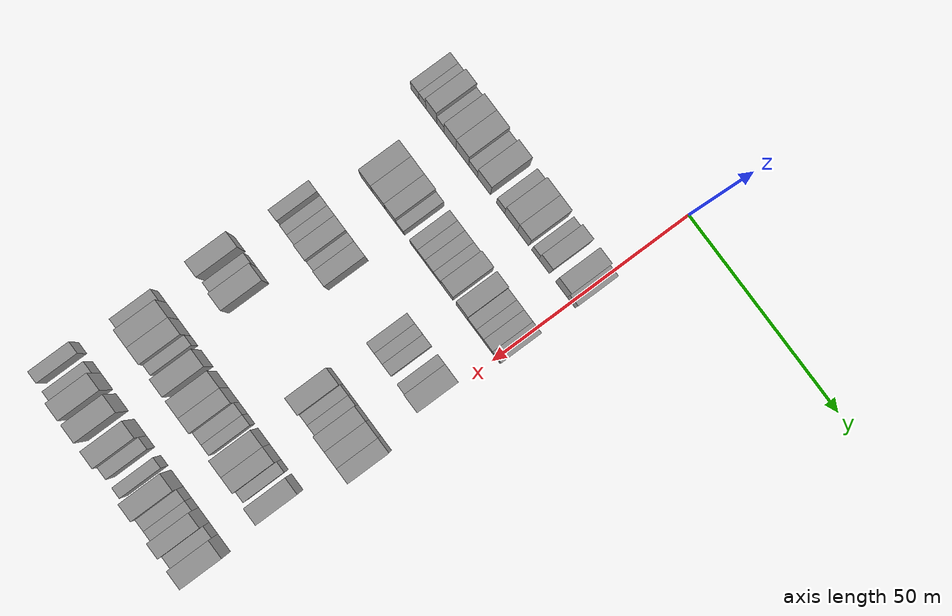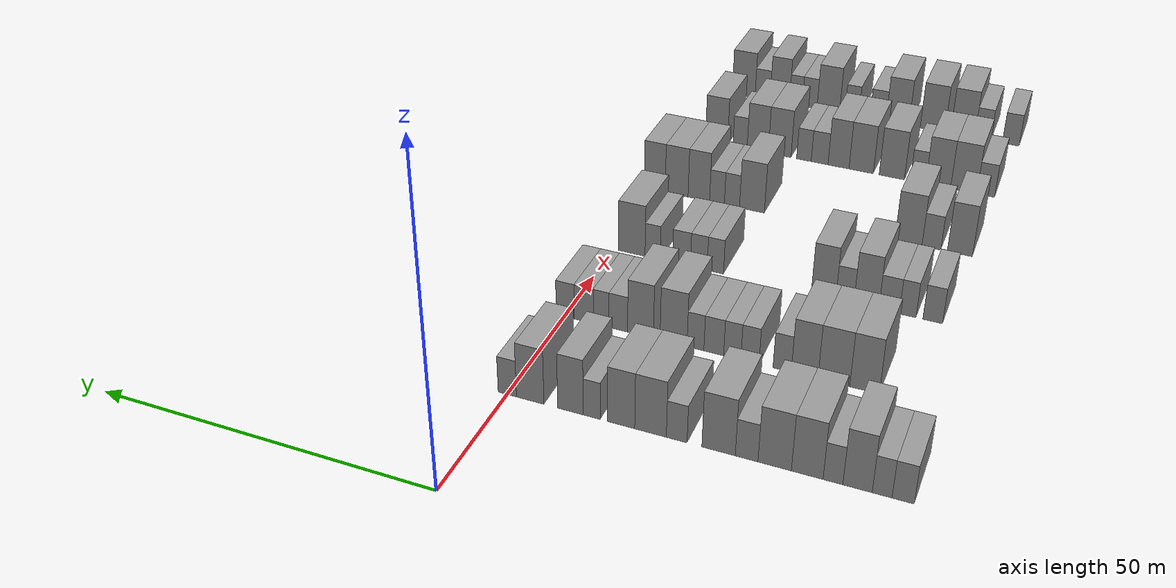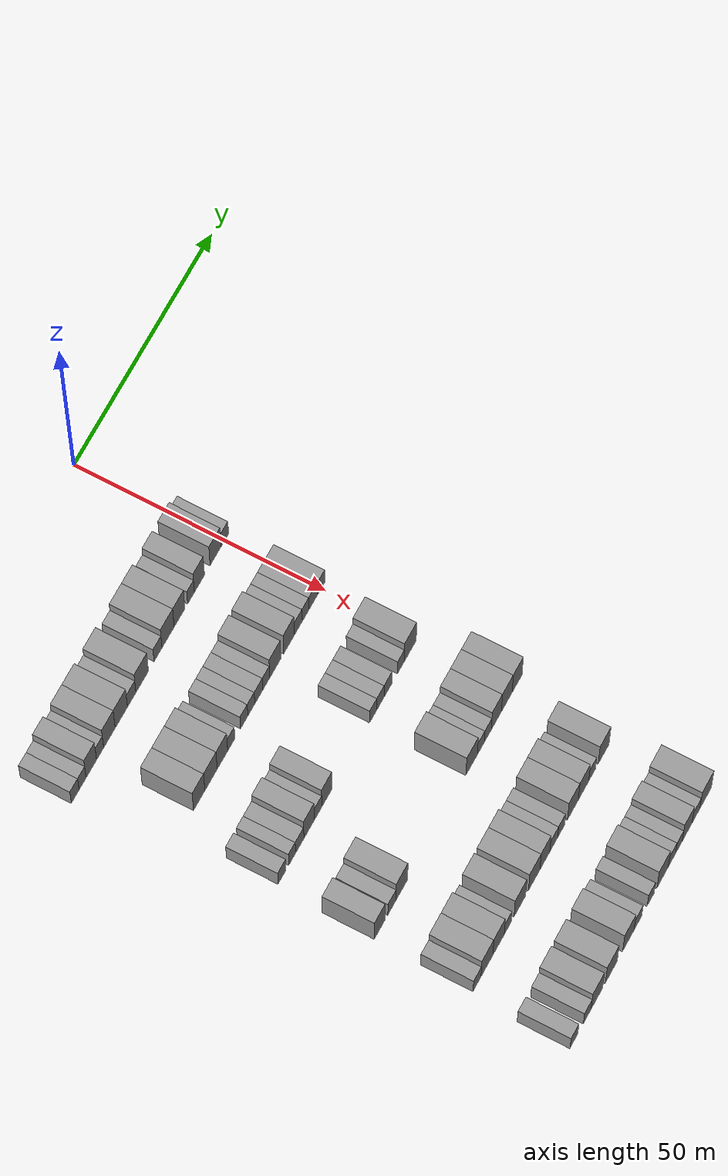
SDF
<sdf version="1.6">
 <world name="default">
  <model name="building_76">
   <static>1</static>
   <pose>25.0000 -53.2830 0 0.000000 0.000000 0.000000</pose>
   <link name="link">
    <pose>0 0 3.00 0 0 0</pose>
    <collision name="collision"><geometry><box><size>10.0000 2.7275 6.0000</size></box></geometry></collision>
    <visual name="visual">
     <cast_shadows>0</cast_shadows>
     <geometry><box><size>10.0000 2.7275 6.0000</size></box></geometry>
     <material>
      <script>
       <uri>model://grey_wall/materials/scripts</uri>
       <uri>model://grey_wall/materials/textures</uri>
       <name>vrc/grey_wall</name>
      </script>
     </material>
    </visual>
   </link>
  </model>
  <model name="building_77">
   <static>1</static>
   <pose>25.0000 -50.6937 0 0.000000 0.000000 0.000000</pose>
   <link name="link">
    <pose>0 0 3.00 0 0 0</pose>
    <collision name="collision"><geometry><box><size>10.0000 2.4512 6.0000</size></box></geometry></collision>
    <visual name="visual">
     <cast_shadows>0</cast_shadows>
     <geometry><box><size>10.0000 2.4512 6.0000</size></box></geometry>
     <material>
      <script>
       <uri>model://grey_wall/materials/scripts</uri>
       <uri>model://grey_wall/materials/textures</uri>
       <name>vrc/grey_wall</name>
      </script>
     </material>
    </visual>
   </link>
  </model>
  <model name="building_78">
   <static>1</static>
   <pose>25.0000 -47.6347 0 0.000000 0.000000 0.000000</pose>
   <link name="link">
    <pose>0 0 4.50 0 0 0</pose>
    <collision name="collision"><geometry><box><size>10.0000 3.6666 9.0000</size></box></geometry></collision>
    <visual name="visual">
     <cast_shadows>0</cast_shadows>
     <geometry><box><size>10.0000 3.6666 9.0000</size></box></geometry>
     <material>
      <script>
       <uri>model://grey_wall/materials/scripts</uri>
       <uri>model://grey_wall/materials/textures</uri>
       <name>vrc/grey_wall</name>
      </script>
     </material>
    </visual>
   </link>
  </model>
  <model name="building_79">
   <static>1</static>
   <pose>25.0000 -44.5523 0 0.000000 0.000000 0.000000</pose>
   <link name="link">
    <pose>0 0 3.00 0 0 0</pose>
    <collision name="collision"><geometry><box><size>10.0000 2.4983 6.0000</size></box></geometry></collision>
    <visual name="visual">
     <cast_shadows>0</cast_shadows>
     <geometry><box><size>10.0000 2.4983 6.0000</size></box></geometry>
     <material>
      <script>
       <uri>model://grey_wall/materials/scripts</uri>
       <uri>model://grey_wall/materials/textures</uri>
       <name>vrc/grey_wall</name>
      </script>
     </material>
    </visual>
   </link>
  </model>
  <model name="building_80">
   <static>1</static>
   <pose>25.0000 -41.2727 0 0.000000 0.000000 0.000000</pose>
   <link name="link">
    <pose>0 0 4.50 0 0 0</pose>
    <collision name="collision"><geometry><box><size>10.0000 4.0609 9.0000</size></box></geometry></collision>
    <visual name="visual">
     <cast_shadows>0</cast_shadows>
     <geometry><box><size>10.0000 4.0609 9.0000</size></box></geometry>
     <material>
      <script>
       <uri>model://grey_wall/materials/scripts</uri>
       <uri>model://grey_wall/materials/textures</uri>
       <name>vrc/grey_wall</name>
      </script>
     </material>
    </visual>
   </link>
  </model>
  <model name="building_81">
   <static>1</static>
   <pose>25.0000 -37.0720 0 0.000000 0.000000 0.000000</pose>
   <link name="link">
    <pose>0 0 4.50 0 0 0</pose>
    <collision name="collision"><geometry><box><size>10.0000 4.3405 9.0000</size></box></geometry></collision>
    <visual name="visual">
     <cast_shadows>0</cast_shadows>
     <geometry><box><size>10.0000 4.3405 9.0000</size></box></geometry>
     <material>
      <script>
       <uri>model://grey_wall/materials/scripts</uri>
       <uri>model://grey_wall/materials/textures</uri>
       <name>vrc/grey_wall</name>
      </script>
     </material>
    </visual>
   </link>
  </model>
  <model name="building_82">
   <static>1</static>
   <pose>25.0000 -33.4084 0 0.000000 0.000000 0.000000</pose>
   <link name="link">
    <pose>0 0 3.00 0 0 0</pose>
    <collision name="collision"><geometry><box><size>10.0000 2.9866 6.0000</size></box></geometry></collision>
    <visual name="visual">
     <cast_shadows>0</cast_shadows>
     <geometry><box><size>10.0000 2.9866 6.0000</size></box></geometry>
     <material>
      <script>
       <uri>model://grey_wall/materials/scripts</uri>
       <uri>model://grey_wall/materials/textures</uri>
       <name>vrc/grey_wall</name>
      </script>
     </material>
    </visual>
   </link>
  </model>
  <model name="building_83">
   <static>1</static>
   <pose>25.0000 -29.6870 0 0.000000 0.000000 0.000000</pose>
   <link name="link">
    <pose>0 0 4.50 0 0 0</pose>
    <collision name="collision"><geometry><box><size>10.0000 4.4562 9.0000</size></box></geometry></collision>
    <visual name="visual">
     <cast_shadows>0</cast_shadows>
     <geometry><box><size>10.0000 4.4562 9.0000</size></box></geometry>
     <material>
      <script>
       <uri>model://grey_wall/materials/scripts</uri>
       <uri>model://grey_wall/materials/textures</uri>
       <name>vrc/grey_wall</name>
      </script>
     </material>
    </visual>
   </link>
  </model>
  <model name="building_84">
   <static>1</static>
   <pose>25.0000 -24.0483 0 0.000000 0.000000 0.000000</pose>
   <link name="link">
    <pose>0 0 3.00 0 0 0</pose>
    <collision name="collision"><geometry><box><size>10.0000 2.8212 6.0000</size></box></geometry></collision>
    <visual name="visual">
     <cast_shadows>0</cast_shadows>
     <geometry><box><size>10.0000 2.8212 6.0000</size></box></geometry>
     <material>
      <script>
       <uri>model://grey_wall/materials/scripts</uri>
       <uri>model://grey_wall/materials/textures</uri>
       <name>vrc/grey_wall</name>
      </script>
     </material>
    </visual>
   </link>
  </model>
  <model name="building_85">
   <static>1</static>
   <pose>25.0000 -20.4585 0 0.000000 0.000000 0.000000</pose>
   <link name="link">
    <pose>0 0 4.50 0 0 0</pose>
    <collision name="collision"><geometry><box><size>10.0000 4.3584 9.0000</size></box></geometry></collision>
    <visual name="visual">
     <cast_shadows>0</cast_shadows>
     <geometry><box><size>10.0000 4.3584 9.0000</size></box></geometry>
     <material>
      <script>
       <uri>model://grey_wall/materials/scripts</uri>
       <uri>model://grey_wall/materials/textures</uri>
       <name>vrc/grey_wall</name>
      </script>
     </material>
    </visual>
   </link>
  </model>
  <model name="building_86">
   <static>1</static>
   <pose>25.0000 -16.3618 0 0.000000 0.000000 0.000000</pose>
   <link name="link">
    <pose>0 0 4.50 0 0 0</pose>
    <collision name="collision"><geometry><box><size>10.0000 3.8350 9.0000</size></box></geometry></collision>
    <visual name="visual">
     <cast_shadows>0</cast_shadows>
     <geometry><box><size>10.0000 3.8350 9.0000</size></box></geometry>
     <material>
      <script>
       <uri>model://grey_wall/materials/scripts</uri>
       <uri>model://grey_wall/materials/textures</uri>
       <name>vrc/grey_wall</name>
      </script>
     </material>
    </visual>
   </link>
  </model>
  <model name="building_87">
   <static>1</static>
   <pose>25.0000 -12.2404 0 0.000000 0.000000 0.000000</pose>
   <link name="link">
    <pose>0 0 3.00 0 0 0</pose>
    <collision name="collision"><geometry><box><size>10.0000 2.4077 6.0000</size></box></geometry></collision>
    <visual name="visual">
     <cast_shadows>0</cast_shadows>
     <geometry><box><size>10.0000 2.4077 6.0000</size></box></geometry>
     <material>
      <script>
       <uri>model://grey_wall/materials/scripts</uri>
       <uri>model://grey_wall/materials/textures</uri>
       <name>vrc/grey_wall</name>
      </script>
     </material>
    </visual>
   </link>
  </model>
  <model name="building_88">
   <static>1</static>
   <pose>25.0000 -9.2104 0 0.000000 0.000000 0.000000</pose>
   <link name="link">
    <pose>0 0 4.50 0 0 0</pose>
    <collision name="collision"><geometry><box><size>10.0000 3.6524 9.0000</size></box></geometry></collision>
    <visual name="visual">
     <cast_shadows>0</cast_shadows>
     <geometry><box><size>10.0000 3.6524 9.0000</size></box></geometry>
     <material>
      <script>
       <uri>model://grey_wall/materials/scripts</uri>
       <uri>model://grey_wall/materials/textures</uri>
       <name>vrc/grey_wall</name>
      </script>
     </material>
    </visual>
   </link>
  </model>
  <model name="building_89">
   <static>1</static>
   <pose>25.0000 -3.3761 0 0.000000 0.000000 0.000000</pose>
   <link name="link">
    <pose>0 0 4.50 0 0 0</pose>
    <collision name="collision"><geometry><box><size>10.0000 4.0163 9.0000</size></box></geometry></collision>
    <visual name="visual">
     <cast_shadows>0</cast_shadows>
     <geometry><box><size>10.0000 4.0163 9.0000</size></box></geometry>
     <material>
      <script>
       <uri>model://grey_wall/materials/scripts</uri>
       <uri>model://grey_wall/materials/textures</uri>
       <name>vrc/grey_wall</name>
      </script>
     </material>
    </visual>
   </link>
  </model>
  <model name="building_90">
   <static>1</static>
   <pose>25.0000 -0.0194 0 0.000000 0.000000 0.000000</pose>
   <link name="link">
    <pose>0 0 3.00 0 0 0</pose>
    <collision name="collision"><geometry><box><size>10.0000 2.6971 6.0000</size></box></geometry></collision>
    <visual name="visual">
     <cast_shadows>0</cast_shadows>
     <geometry><box><size>10.0000 2.6971 6.0000</size></box></geometry>
     <material>
      <script>
       <uri>model://grey_wall/materials/scripts</uri>
       <uri>model://grey_wall/materials/textures</uri>
       <name>vrc/grey_wall</name>
      </script>
     </material>
    </visual>
   </link>
  </model>
  <model name="building_249">
   <static>1</static>
   <pose>44.0000 -43.9465 0 0.000000 0.000000 0.000000</pose>
   <link name="link">
    <pose>0 0 4.50 0 0 0</pose>
    <collision name="collision"><geometry><box><size>10.0000 4.0432 9.0000</size></box></geometry></collision>
    <visual name="visual">
     <cast_shadows>0</cast_shadows>
     <geometry><box><size>10.0000 4.0432 9.0000</size></box></geometry>
     <material>
      <script>
       <uri>model://grey_wall/materials/scripts</uri>
       <uri>model://grey_wall/materials/textures</uri>
       <name>vrc/grey_wall</name>
      </script>
     </material>
    </visual>
   </link>
  </model>
  <model name="building_250">
   <static>1</static>
   <pose>44.0000 -39.7288 0 0.000000 0.000000 0.000000</pose>
   <link name="link">
    <pose>0 0 4.50 0 0 0</pose>
    <collision name="collision"><geometry><box><size>10.0000 4.3920 9.0000</size></box></geometry></collision>
    <visual name="visual">
     <cast_shadows>0</cast_shadows>
     <geometry><box><size>10.0000 4.3920 9.0000</size></box></geometry>
     <material>
      <script>
       <uri>model://grey_wall/materials/scripts</uri>
       <uri>model://grey_wall/materials/textures</uri>
       <name>vrc/grey_wall</name>
      </script>
     </material>
    </visual>
   </link>
  </model>
  <model name="building_251">
   <static>1</static>
   <pose>44.0000 -35.6604 0 0.000000 0.000000 0.000000</pose>
   <link name="link">
    <pose>0 0 4.50 0 0 0</pose>
    <collision name="collision"><geometry><box><size>10.0000 3.7448 9.0000</size></box></geometry></collision>
    <visual name="visual">
     <cast_shadows>0</cast_shadows>
     <geometry><box><size>10.0000 3.7448 9.0000</size></box></geometry>
     <material>
      <script>
       <uri>model://grey_wall/materials/scripts</uri>
       <uri>model://grey_wall/materials/textures</uri>
       <name>vrc/grey_wall</name>
      </script>
     </material>
    </visual>
   </link>
  </model>
  <model name="building_252">
   <static>1</static>
   <pose>44.0000 -32.4972 0 0.000000 0.000000 0.000000</pose>
   <link name="link">
    <pose>0 0 3.00 0 0 0</pose>
    <collision name="collision"><geometry><box><size>10.0000 2.5817 6.0000</size></box></geometry></collision>
    <visual name="visual">
     <cast_shadows>0</cast_shadows>
     <geometry><box><size>10.0000 2.5817 6.0000</size></box></geometry>
     <material>
      <script>
       <uri>model://grey_wall/materials/scripts</uri>
       <uri>model://grey_wall/materials/textures</uri>
       <name>vrc/grey_wall</name>
      </script>
     </material>
    </visual>
   </link>
  </model>
  <model name="building_253">
   <static>1</static>
   <pose>44.0000 -27.9006 0 0.000000 0.000000 0.000000</pose>
   <link name="link">
    <pose>0 0 3.00 0 0 0</pose>
    <collision name="collision"><geometry><box><size>10.0000 2.6114 6.0000</size></box></geometry></collision>
    <visual name="visual">
     <cast_shadows>0</cast_shadows>
     <geometry><box><size>10.0000 2.6114 6.0000</size></box></geometry>
     <material>
      <script>
       <uri>model://grey_wall/materials/scripts</uri>
       <uri>model://grey_wall/materials/textures</uri>
       <name>vrc/grey_wall</name>
      </script>
     </material>
    </visual>
   </link>
  </model>
  <model name="building_254">
   <static>1</static>
   <pose>44.0000 -25.3460 0 0.000000 0.000000 0.000000</pose>
   <link name="link">
    <pose>0 0 3.00 0 0 0</pose>
    <collision name="collision"><geometry><box><size>10.0000 2.4978 6.0000</size></box></geometry></collision>
    <visual name="visual">
     <cast_shadows>0</cast_shadows>
     <geometry><box><size>10.0000 2.4978 6.0000</size></box></geometry>
     <material>
      <script>
       <uri>model://grey_wall/materials/scripts</uri>
       <uri>model://grey_wall/materials/textures</uri>
       <name>vrc/grey_wall</name>
      </script>
     </material>
    </visual>
   </link>
  </model>
  <model name="building_255">
   <static>1</static>
   <pose>44.0000 -22.6495 0 0.000000 0.000000 0.000000</pose>
   <link name="link">
    <pose>0 0 3.00 0 0 0</pose>
    <collision name="collision"><geometry><box><size>10.0000 2.8953 6.0000</size></box></geometry></collision>
    <visual name="visual">
     <cast_shadows>0</cast_shadows>
     <geometry><box><size>10.0000 2.8953 6.0000</size></box></geometry>
     <material>
      <script>
       <uri>model://grey_wall/materials/scripts</uri>
       <uri>model://grey_wall/materials/textures</uri>
       <name>vrc/grey_wall</name>
      </script>
     </material>
    </visual>
   </link>
  </model>
  <model name="building_256">
   <static>1</static>
   <pose>44.0000 -19.9561 0 0.000000 0.000000 0.000000</pose>
   <link name="link">
    <pose>0 0 3.00 0 0 0</pose>
    <collision name="collision"><geometry><box><size>10.0000 2.4915 6.0000</size></box></geometry></collision>
    <visual name="visual">
     <cast_shadows>0</cast_shadows>
     <geometry><box><size>10.0000 2.4915 6.0000</size></box></geometry>
     <material>
      <script>
       <uri>model://grey_wall/materials/scripts</uri>
       <uri>model://grey_wall/materials/textures</uri>
       <name>vrc/grey_wall</name>
      </script>
     </material>
    </visual>
   </link>
  </model>
  <model name="building_257">
   <static>1</static>
   <pose>44.0000 -16.6980 0 0.000000 0.000000 0.000000</pose>
   <link name="link">
    <pose>0 0 4.50 0 0 0</pose>
    <collision name="collision"><geometry><box><size>10.0000 4.0246 9.0000</size></box></geometry></collision>
    <visual name="visual">
     <cast_shadows>0</cast_shadows>
     <geometry><box><size>10.0000 4.0246 9.0000</size></box></geometry>
     <material>
      <script>
       <uri>model://grey_wall/materials/scripts</uri>
       <uri>model://grey_wall/materials/textures</uri>
       <name>vrc/grey_wall</name>
      </script>
     </material>
    </visual>
   </link>
  </model>
  <model name="building_258">
   <static>1</static>
   <pose>44.0000 -11.7282 0 0.000000 0.000000 0.000000</pose>
   <link name="link">
    <pose>0 0 4.50 0 0 0</pose>
    <collision name="collision"><geometry><box><size>10.0000 3.9151 9.0000</size></box></geometry></collision>
    <visual name="visual">
     <cast_shadows>0</cast_shadows>
     <geometry><box><size>10.0000 3.9151 9.0000</size></box></geometry>
     <material>
      <script>
       <uri>model://grey_wall/materials/scripts</uri>
       <uri>model://grey_wall/materials/textures</uri>
       <name>vrc/grey_wall</name>
      </script>
     </material>
    </visual>
   </link>
  </model>
  <model name="building_259">
   <static>1</static>
   <pose>44.0000 -8.3479 0 0.000000 0.000000 0.000000</pose>
   <link name="link">
    <pose>0 0 3.00 0 0 0</pose>
    <collision name="collision"><geometry><box><size>10.0000 2.8455 6.0000</size></box></geometry></collision>
    <visual name="visual">
     <cast_shadows>0</cast_shadows>
     <geometry><box><size>10.0000 2.8455 6.0000</size></box></geometry>
     <material>
      <script>
       <uri>model://grey_wall/materials/scripts</uri>
       <uri>model://grey_wall/materials/textures</uri>
       <name>vrc/grey_wall</name>
      </script>
     </material>
    </visual>
   </link>
  </model>
  <model name="building_260">
   <static>1</static>
   <pose>44.0000 -5.7207 0 0.000000 0.000000 0.000000</pose>
   <link name="link">
    <pose>0 0 3.00 0 0 0</pose>
    <collision name="collision"><geometry><box><size>10.0000 2.4090 6.0000</size></box></geometry></collision>
    <visual name="visual">
     <cast_shadows>0</cast_shadows>
     <geometry><box><size>10.0000 2.4090 6.0000</size></box></geometry>
     <material>
      <script>
       <uri>model://grey_wall/materials/scripts</uri>
       <uri>model://grey_wall/materials/textures</uri>
       <name>vrc/grey_wall</name>
      </script>
     </material>
    </visual>
   </link>
  </model>
  <model name="building_261">
   <static>1</static>
   <pose>44.0000 -3.0319 0 0.000000 0.000000 0.000000</pose>
   <link name="link">
    <pose>0 0 3.00 0 0 0</pose>
    <collision name="collision"><geometry><box><size>10.0000 2.9687 6.0000</size></box></geometry></collision>
    <visual name="visual">
     <cast_shadows>0</cast_shadows>
     <geometry><box><size>10.0000 2.9687 6.0000</size></box></geometry>
     <material>
      <script>
       <uri>model://grey_wall/materials/scripts</uri>
       <uri>model://grey_wall/materials/textures</uri>
       <name>vrc/grey_wall</name>
      </script>
     </material>
    </visual>
   </link>
  </model>
  <model name="building_262">
   <static>1</static>
   <pose>44.0000 -0.1286 0 0.000000 0.000000 0.000000</pose>
   <link name="link">
    <pose>0 0 3.00 0 0 0</pose>
    <collision name="collision"><geometry><box><size>10.0000 2.8380 6.0000</size></box></geometry></collision>
    <visual name="visual">
     <cast_shadows>0</cast_shadows>
     <geometry><box><size>10.0000 2.8380 6.0000</size></box></geometry>
     <material>
      <script>
       <uri>model://grey_wall/materials/scripts</uri>
       <uri>model://grey_wall/materials/textures</uri>
       <name>vrc/grey_wall</name>
      </script>
     </material>
    </visual>
   </link>
  </model>
  <model name="building_428">
   <static>1</static>
   <pose>63.0000 -49.3367 0 0.000000 0.000000 0.000000</pose>
   <link name="link">
    <pose>0 0 3.00 0 0 0</pose>
    <collision name="collision"><geometry><box><size>10.0000 2.8236 6.0000</size></box></geometry></collision>
    <visual name="visual">
     <cast_shadows>0</cast_shadows>
     <geometry><box><size>10.0000 2.8236 6.0000</size></box></geometry>
     <material>
      <script>
       <uri>model://grey_wall/materials/scripts</uri>
       <uri>model://grey_wall/materials/textures</uri>
       <name>vrc/grey_wall</name>
      </script>
     </material>
    </visual>
   </link>
  </model>
  <model name="building_429">
   <static>1</static>
   <pose>63.0000 -45.7119 0 0.000000 0.000000 0.000000</pose>
   <link name="link">
    <pose>0 0 3.00 0 0 0</pose>
    <collision name="collision"><geometry><box><size>10.0000 2.4261 6.0000</size></box></geometry></collision>
    <visual name="visual">
     <cast_shadows>0</cast_shadows>
     <geometry><box><size>10.0000 2.4261 6.0000</size></box></geometry>
     <material>
      <script>
       <uri>model://grey_wall/materials/scripts</uri>
       <uri>model://grey_wall/materials/textures</uri>
       <name>vrc/grey_wall</name>
      </script>
     </material>
    </visual>
   </link>
  </model>
  <model name="building_430">
   <static>1</static>
   <pose>63.0000 -43.0051 0 0.000000 0.000000 0.000000</pose>
   <link name="link">
    <pose>0 0 3.00 0 0 0</pose>
    <collision name="collision"><geometry><box><size>10.0000 2.9874 6.0000</size></box></geometry></collision>
    <visual name="visual">
     <cast_shadows>0</cast_shadows>
     <geometry><box><size>10.0000 2.9874 6.0000</size></box></geometry>
     <material>
      <script>
       <uri>model://grey_wall/materials/scripts</uri>
       <uri>model://grey_wall/materials/textures</uri>
       <name>vrc/grey_wall</name>
      </script>
     </material>
    </visual>
   </link>
  </model>
  <model name="building_431">
   <static>1</static>
   <pose>63.0000 -39.6616 0 0.000000 0.000000 0.000000</pose>
   <link name="link">
    <pose>0 0 4.50 0 0 0</pose>
    <collision name="collision"><geometry><box><size>10.0000 3.6996 9.0000</size></box></geometry></collision>
    <visual name="visual">
     <cast_shadows>0</cast_shadows>
     <geometry><box><size>10.0000 3.6996 9.0000</size></box></geometry>
     <material>
      <script>
       <uri>model://grey_wall/materials/scripts</uri>
       <uri>model://grey_wall/materials/textures</uri>
       <name>vrc/grey_wall</name>
      </script>
     </material>
    </visual>
   </link>
  </model>
  <model name="building_432">
   <static>1</static>
   <pose>63.0000 -36.4621 0 0.000000 0.000000 0.000000</pose>
   <link name="link">
    <pose>0 0 3.00 0 0 0</pose>
    <collision name="collision"><geometry><box><size>10.0000 2.6994 6.0000</size></box></geometry></collision>
    <visual name="visual">
     <cast_shadows>0</cast_shadows>
     <geometry><box><size>10.0000 2.6994 6.0000</size></box></geometry>
     <material>
      <script>
       <uri>model://grey_wall/materials/scripts</uri>
       <uri>model://grey_wall/materials/textures</uri>
       <name>vrc/grey_wall</name>
      </script>
     </material>
    </visual>
   </link>
  </model>
  <model name="building_433">
   <static>1</static>
   <pose>63.0000 -33.2573 0 0.000000 0.000000 0.000000</pose>
   <link name="link">
    <pose>0 0 4.50 0 0 0</pose>
    <collision name="collision"><geometry><box><size>10.0000 3.7102 9.0000</size></box></geometry></collision>
    <visual name="visual">
     <cast_shadows>0</cast_shadows>
     <geometry><box><size>10.0000 3.7102 9.0000</size></box></geometry>
     <material>
      <script>
       <uri>model://grey_wall/materials/scripts</uri>
       <uri>model://grey_wall/materials/textures</uri>
       <name>vrc/grey_wall</name>
      </script>
     </material>
    </visual>
   </link>
  </model>
  <model name="building_434">
   <static>1</static>
   <pose>63.0000 -16.5057 0 0.000000 0.000000 0.000000</pose>
   <link name="link">
    <pose>0 0 3.00 0 0 0</pose>
    <collision name="collision"><geometry><box><size>10.0000 2.5976 6.0000</size></box></geometry></collision>
    <visual name="visual">
     <cast_shadows>0</cast_shadows>
     <geometry><box><size>10.0000 2.5976 6.0000</size></box></geometry>
     <material>
      <script>
       <uri>model://grey_wall/materials/scripts</uri>
       <uri>model://grey_wall/materials/textures</uri>
       <name>vrc/grey_wall</name>
      </script>
     </material>
    </visual>
   </link>
  </model>
  <model name="building_435">
   <static>1</static>
   <pose>63.0000 -13.8715 0 0.000000 0.000000 0.000000</pose>
   <link name="link">
    <pose>0 0 3.00 0 0 0</pose>
    <collision name="collision"><geometry><box><size>10.0000 2.6709 6.0000</size></box></geometry></collision>
    <visual name="visual">
     <cast_shadows>0</cast_shadows>
     <geometry><box><size>10.0000 2.6709 6.0000</size></box></geometry>
     <material>
      <script>
       <uri>model://grey_wall/materials/scripts</uri>
       <uri>model://grey_wall/materials/textures</uri>
       <name>vrc/grey_wall</name>
      </script>
     </material>
    </visual>
   </link>
  </model>
  <model name="building_436">
   <static>1</static>
   <pose>63.0000 -11.0898 0 0.000000 0.000000 0.000000</pose>
   <link name="link">
    <pose>0 0 3.00 0 0 0</pose>
    <collision name="collision"><geometry><box><size>10.0000 2.8925 6.0000</size></box></geometry></collision>
    <visual name="visual">
     <cast_shadows>0</cast_shadows>
     <geometry><box><size>10.0000 2.8925 6.0000</size></box></geometry>
     <material>
      <script>
       <uri>model://grey_wall/materials/scripts</uri>
       <uri>model://grey_wall/materials/textures</uri>
       <name>vrc/grey_wall</name>
      </script>
     </material>
    </visual>
   </link>
  </model>
  <model name="building_437">
   <static>1</static>
   <pose>63.0000 -6.3960 0 0.000000 0.000000 0.000000</pose>
   <link name="link">
    <pose>0 0 3.00 0 0 0</pose>
    <collision name="collision"><geometry><box><size>10.0000 2.4951 6.0000</size></box></geometry></collision>
    <visual name="visual">
     <cast_shadows>0</cast_shadows>
     <geometry><box><size>10.0000 2.4951 6.0000</size></box></geometry>
     <material>
      <script>
       <uri>model://grey_wall/materials/scripts</uri>
       <uri>model://grey_wall/materials/textures</uri>
       <name>vrc/grey_wall</name>
      </script>
     </material>
    </visual>
   </link>
  </model>
  <model name="building_438">
   <static>1</static>
   <pose>63.0000 -2.9537 0 0.000000 0.000000 0.000000</pose>
   <link name="link">
    <pose>0 0 4.50 0 0 0</pose>
    <collision name="collision"><geometry><box><size>10.0000 4.3895 9.0000</size></box></geometry></collision>
    <visual name="visual">
     <cast_shadows>0</cast_shadows>
     <geometry><box><size>10.0000 4.3895 9.0000</size></box></geometry>
     <material>
      <script>
       <uri>model://grey_wall/materials/scripts</uri>
       <uri>model://grey_wall/materials/textures</uri>
       <name>vrc/grey_wall</name>
      </script>
     </material>
    </visual>
   </link>
  </model>
  <model name="building_601">
   <static>1</static>
   <pose>82.0000 -49.7331 0 0.000000 0.000000 0.000000</pose>
   <link name="link">
    <pose>0 0 4.50 0 0 0</pose>
    <collision name="collision"><geometry><box><size>10.0000 3.8321 9.0000</size></box></geometry></collision>
    <visual name="visual">
     <cast_shadows>0</cast_shadows>
     <geometry><box><size>10.0000 3.8321 9.0000</size></box></geometry>
     <material>
      <script>
       <uri>model://grey_wall/materials/scripts</uri>
       <uri>model://grey_wall/materials/textures</uri>
       <name>vrc/grey_wall</name>
      </script>
     </material>
    </visual>
   </link>
  </model>
  <model name="building_602">
   <static>1</static>
   <pose>82.0000 -45.3553 0 0.000000 0.000000 0.000000</pose>
   <link name="link">
    <pose>0 0 3.00 0 0 0</pose>
    <collision name="collision"><geometry><box><size>10.0000 2.9236 6.0000</size></box></geometry></collision>
    <visual name="visual">
     <cast_shadows>0</cast_shadows>
     <geometry><box><size>10.0000 2.9236 6.0000</size></box></geometry>
     <material>
      <script>
       <uri>model://grey_wall/materials/scripts</uri>
       <uri>model://grey_wall/materials/textures</uri>
       <name>vrc/grey_wall</name>
      </script>
     </material>
    </visual>
   </link>
  </model>
  <model name="building_603">
   <static>1</static>
   <pose>82.0000 -41.7705 0 0.000000 0.000000 0.000000</pose>
   <link name="link">
    <pose>0 0 4.50 0 0 0</pose>
    <collision name="collision"><geometry><box><size>10.0000 4.2459 9.0000</size></box></geometry></collision>
    <visual name="visual">
     <cast_shadows>0</cast_shadows>
     <geometry><box><size>10.0000 4.2459 9.0000</size></box></geometry>
     <material>
      <script>
       <uri>model://grey_wall/materials/scripts</uri>
       <uri>model://grey_wall/materials/textures</uri>
       <name>vrc/grey_wall</name>
      </script>
     </material>
    </visual>
   </link>
  </model>
  <model name="building_604">
   <static>1</static>
   <pose>82.0000 -16.3483 0 0.000000 0.000000 0.000000</pose>
   <link name="link">
    <pose>0 0 4.50 0 0 0</pose>
    <collision name="collision"><geometry><box><size>10.0000 4.1995 9.0000</size></box></geometry></collision>
    <visual name="visual">
     <cast_shadows>0</cast_shadows>
     <geometry><box><size>10.0000 4.1995 9.0000</size></box></geometry>
     <material>
      <script>
       <uri>model://grey_wall/materials/scripts</uri>
       <uri>model://grey_wall/materials/textures</uri>
       <name>vrc/grey_wall</name>
      </script>
     </material>
    </visual>
   </link>
  </model>
  <model name="building_605">
   <static>1</static>
   <pose>82.0000 -12.9643 0 0.000000 0.000000 0.000000</pose>
   <link name="link">
    <pose>0 0 3.00 0 0 0</pose>
    <collision name="collision"><geometry><box><size>10.0000 2.5686 6.0000</size></box></geometry></collision>
    <visual name="visual">
     <cast_shadows>0</cast_shadows>
     <geometry><box><size>10.0000 2.5686 6.0000</size></box></geometry>
     <material>
      <script>
       <uri>model://grey_wall/materials/scripts</uri>
       <uri>model://grey_wall/materials/textures</uri>
       <name>vrc/grey_wall</name>
      </script>
     </material>
    </visual>
   </link>
  </model>
  <model name="building_606">
   <static>1</static>
   <pose>82.0000 -10.4094 0 0.000000 0.000000 0.000000</pose>
   <link name="link">
    <pose>0 0 3.00 0 0 0</pose>
    <collision name="collision"><geometry><box><size>10.0000 2.5410 6.0000</size></box></geometry></collision>
    <visual name="visual">
     <cast_shadows>0</cast_shadows>
     <geometry><box><size>10.0000 2.5410 6.0000</size></box></geometry>
     <material>
      <script>
       <uri>model://grey_wall/materials/scripts</uri>
       <uri>model://grey_wall/materials/textures</uri>
       <name>vrc/grey_wall</name>
      </script>
     </material>
    </visual>
   </link>
  </model>
  <model name="building_607">
   <static>1</static>
   <pose>82.0000 -7.2807 0 0.000000 0.000000 0.000000</pose>
   <link name="link">
    <pose>0 0 4.50 0 0 0</pose>
    <collision name="collision"><geometry><box><size>10.0000 3.7166 9.0000</size></box></geometry></collision>
    <visual name="visual">
     <cast_shadows>0</cast_shadows>
     <geometry><box><size>10.0000 3.7166 9.0000</size></box></geometry>
     <material>
      <script>
       <uri>model://grey_wall/materials/scripts</uri>
       <uri>model://grey_wall/materials/textures</uri>
       <name>vrc/grey_wall</name>
      </script>
     </material>
    </visual>
   </link>
  </model>
  <model name="building_608">
   <static>1</static>
   <pose>82.0000 -3.4194 0 0.000000 0.000000 0.000000</pose>
   <link name="link">
    <pose>0 0 4.50 0 0 0</pose>
    <collision name="collision"><geometry><box><size>10.0000 4.0059 9.0000</size></box></geometry></collision>
    <visual name="visual">
     <cast_shadows>0</cast_shadows>
     <geometry><box><size>10.0000 4.0059 9.0000</size></box></geometry>
     <material>
      <script>
       <uri>model://grey_wall/materials/scripts</uri>
       <uri>model://grey_wall/materials/textures</uri>
       <name>vrc/grey_wall</name>
      </script>
     </material>
    </visual>
   </link>
  </model>
  <model name="building_609">
   <static>1</static>
   <pose>82.0000 0.4209 0 0.000000 0.000000 0.000000</pose>
   <link name="link">
    <pose>0 0 4.50 0 0 0</pose>
    <collision name="collision"><geometry><box><size>10.0000 3.6747 9.0000</size></box></geometry></collision>
    <visual name="visual">
     <cast_shadows>0</cast_shadows>
     <geometry><box><size>10.0000 3.6747 9.0000</size></box></geometry>
     <material>
      <script>
       <uri>model://grey_wall/materials/scripts</uri>
       <uri>model://grey_wall/materials/textures</uri>
       <name>vrc/grey_wall</name>
      </script>
     </material>
    </visual>
   </link>
  </model>
  <model name="building_771">
   <static>1</static>
   <pose>101.0000 -50.5029 0 0.000000 0.000000 0.000000</pose>
   <link name="link">
    <pose>0 0 3.00 0 0 0</pose>
    <collision name="collision"><geometry><box><size>10.0000 2.8710 6.0000</size></box></geometry></collision>
    <visual name="visual">
     <cast_shadows>0</cast_shadows>
     <geometry><box><size>10.0000 2.8710 6.0000</size></box></geometry>
     <material>
      <script>
       <uri>model://grey_wall/materials/scripts</uri>
       <uri>model://grey_wall/materials/textures</uri>
       <name>vrc/grey_wall</name>
      </script>
     </material>
    </visual>
   </link>
  </model>
  <model name="building_772">
   <static>1</static>
   <pose>101.0000 -46.9068 0 0.000000 0.000000 0.000000</pose>
   <link name="link">
    <pose>0 0 4.50 0 0 0</pose>
    <collision name="collision"><geometry><box><size>10.0000 4.3212 9.0000</size></box></geometry></collision>
    <visual name="visual">
     <cast_shadows>0</cast_shadows>
     <geometry><box><size>10.0000 4.3212 9.0000</size></box></geometry>
     <material>
      <script>
       <uri>model://grey_wall/materials/scripts</uri>
       <uri>model://grey_wall/materials/textures</uri>
       <name>vrc/grey_wall</name>
      </script>
     </material>
    </visual>
   </link>
  </model>
  <model name="building_773">
   <static>1</static>
   <pose>101.0000 -42.6801 0 0.000000 0.000000 0.000000</pose>
   <link name="link">
    <pose>0 0 4.50 0 0 0</pose>
    <collision name="collision"><geometry><box><size>10.0000 4.1321 9.0000</size></box></geometry></collision>
    <visual name="visual">
     <cast_shadows>0</cast_shadows>
     <geometry><box><size>10.0000 4.1321 9.0000</size></box></geometry>
     <material>
      <script>
       <uri>model://grey_wall/materials/scripts</uri>
       <uri>model://grey_wall/materials/textures</uri>
       <name>vrc/grey_wall</name>
      </script>
     </material>
    </visual>
   </link>
  </model>
  <model name="building_774">
   <static>1</static>
   <pose>101.0000 -39.3364 0 0.000000 0.000000 0.000000</pose>
   <link name="link">
    <pose>0 0 3.00 0 0 0</pose>
    <collision name="collision"><geometry><box><size>10.0000 2.5553 6.0000</size></box></geometry></collision>
    <visual name="visual">
     <cast_shadows>0</cast_shadows>
     <geometry><box><size>10.0000 2.5553 6.0000</size></box></geometry>
     <material>
      <script>
       <uri>model://grey_wall/materials/scripts</uri>
       <uri>model://grey_wall/materials/textures</uri>
       <name>vrc/grey_wall</name>
      </script>
     </material>
    </visual>
   </link>
  </model>
  <model name="building_775">
   <static>1</static>
   <pose>101.0000 -34.9213 0 0.000000 0.000000 0.000000</pose>
   <link name="link">
    <pose>0 0 4.50 0 0 0</pose>
    <collision name="collision"><geometry><box><size>10.0000 4.2747 9.0000</size></box></geometry></collision>
    <visual name="visual">
     <cast_shadows>0</cast_shadows>
     <geometry><box><size>10.0000 4.2747 9.0000</size></box></geometry>
     <material>
      <script>
       <uri>model://grey_wall/materials/scripts</uri>
       <uri>model://grey_wall/materials/textures</uri>
       <name>vrc/grey_wall</name>
      </script>
     </material>
    </visual>
   </link>
  </model>
  <model name="building_776">
   <static>1</static>
   <pose>101.0000 -29.6946 0 0.000000 0.000000 0.000000</pose>
   <link name="link">
    <pose>0 0 4.50 0 0 0</pose>
    <collision name="collision"><geometry><box><size>10.0000 4.1788 9.0000</size></box></geometry></collision>
    <visual name="visual">
     <cast_shadows>0</cast_shadows>
     <geometry><box><size>10.0000 4.1788 9.0000</size></box></geometry>
     <material>
      <script>
       <uri>model://grey_wall/materials/scripts</uri>
       <uri>model://grey_wall/materials/textures</uri>
       <name>vrc/grey_wall</name>
      </script>
     </material>
    </visual>
   </link>
  </model>
  <model name="building_777">
   <static>1</static>
   <pose>101.0000 -25.7812 0 0.000000 0.000000 0.000000</pose>
   <link name="link">
    <pose>0 0 4.50 0 0 0</pose>
    <collision name="collision"><geometry><box><size>10.0000 3.6480 9.0000</size></box></geometry></collision>
    <visual name="visual">
     <cast_shadows>0</cast_shadows>
     <geometry><box><size>10.0000 3.6480 9.0000</size></box></geometry>
     <material>
      <script>
       <uri>model://grey_wall/materials/scripts</uri>
       <uri>model://grey_wall/materials/textures</uri>
       <name>vrc/grey_wall</name>
      </script>
     </material>
    </visual>
   </link>
  </model>
  <model name="building_778">
   <static>1</static>
   <pose>101.0000 -22.4838 0 0.000000 0.000000 0.000000</pose>
   <link name="link">
    <pose>0 0 3.00 0 0 0</pose>
    <collision name="collision"><geometry><box><size>10.0000 2.9469 6.0000</size></box></geometry></collision>
    <visual name="visual">
     <cast_shadows>0</cast_shadows>
     <geometry><box><size>10.0000 2.9469 6.0000</size></box></geometry>
     <material>
      <script>
       <uri>model://grey_wall/materials/scripts</uri>
       <uri>model://grey_wall/materials/textures</uri>
       <name>vrc/grey_wall</name>
      </script>
     </material>
    </visual>
   </link>
  </model>
  <model name="building_779">
   <static>1</static>
   <pose>101.0000 -19.7242 0 0.000000 0.000000 0.000000</pose>
   <link name="link">
    <pose>0 0 3.00 0 0 0</pose>
    <collision name="collision"><geometry><box><size>10.0000 2.5722 6.0000</size></box></geometry></collision>
    <visual name="visual">
     <cast_shadows>0</cast_shadows>
     <geometry><box><size>10.0000 2.5722 6.0000</size></box></geometry>
     <material>
      <script>
       <uri>model://grey_wall/materials/scripts</uri>
       <uri>model://grey_wall/materials/textures</uri>
       <name>vrc/grey_wall</name>
      </script>
     </material>
    </visual>
   </link>
  </model>
  <model name="building_780">
   <static>1</static>
   <pose>101.0000 -15.4132 0 0.000000 0.000000 0.000000</pose>
   <link name="link">
    <pose>0 0 4.50 0 0 0</pose>
    <collision name="collision"><geometry><box><size>10.0000 4.0498 9.0000</size></box></geometry></collision>
    <visual name="visual">
     <cast_shadows>0</cast_shadows>
     <geometry><box><size>10.0000 4.0498 9.0000</size></box></geometry>
     <material>
      <script>
       <uri>model://grey_wall/materials/scripts</uri>
       <uri>model://grey_wall/materials/textures</uri>
       <name>vrc/grey_wall</name>
      </script>
     </material>
    </visual>
   </link>
  </model>
  <model name="building_781">
   <static>1</static>
   <pose>101.0000 -11.4712 0 0.000000 0.000000 0.000000</pose>
   <link name="link">
    <pose>0 0 4.50 0 0 0</pose>
    <collision name="collision"><geometry><box><size>10.0000 3.8343 9.0000</size></box></geometry></collision>
    <visual name="visual">
     <cast_shadows>0</cast_shadows>
     <geometry><box><size>10.0000 3.8343 9.0000</size></box></geometry>
     <material>
      <script>
       <uri>model://grey_wall/materials/scripts</uri>
       <uri>model://grey_wall/materials/textures</uri>
       <name>vrc/grey_wall</name>
      </script>
     </material>
    </visual>
   </link>
  </model>
  <model name="building_782">
   <static>1</static>
   <pose>101.0000 -8.2738 0 0.000000 0.000000 0.000000</pose>
   <link name="link">
    <pose>0 0 3.00 0 0 0</pose>
    <collision name="collision"><geometry><box><size>10.0000 2.5605 6.0000</size></box></geometry></collision>
    <visual name="visual">
     <cast_shadows>0</cast_shadows>
     <geometry><box><size>10.0000 2.5605 6.0000</size></box></geometry>
     <material>
      <script>
       <uri>model://grey_wall/materials/scripts</uri>
       <uri>model://grey_wall/materials/textures</uri>
       <name>vrc/grey_wall</name>
      </script>
     </material>
    </visual>
   </link>
  </model>
  <model name="building_783">
   <static>1</static>
   <pose>101.0000 -3.9644 0 0.000000 0.000000 0.000000</pose>
   <link name="link">
    <pose>0 0 4.50 0 0 0</pose>
    <collision name="collision"><geometry><box><size>10.0000 4.0582 9.0000</size></box></geometry></collision>
    <visual name="visual">
     <cast_shadows>0</cast_shadows>
     <geometry><box><size>10.0000 4.0582 9.0000</size></box></geometry>
     <material>
      <script>
       <uri>model://grey_wall/materials/scripts</uri>
       <uri>model://grey_wall/materials/textures</uri>
       <name>vrc/grey_wall</name>
      </script>
     </material>
    </visual>
   </link>
  </model>
  <model name="building_944">
   <static>1</static>
   <pose>120.0000 -51.6470 0 0.000000 0.000000 0.000000</pose>
   <link name="link">
    <pose>0 0 3.00 0 0 0</pose>
    <collision name="collision"><geometry><box><size>10.0000 2.8871 6.0000</size></box></geometry></collision>
    <visual name="visual">
     <cast_shadows>0</cast_shadows>
     <geometry><box><size>10.0000 2.8871 6.0000</size></box></geometry>
     <material>
      <script>
       <uri>model://grey_wall/materials/scripts</uri>
       <uri>model://grey_wall/materials/textures</uri>
       <name>vrc/grey_wall</name>
      </script>
     </material>
    </visual>
   </link>
  </model>
  <model name="building_945">
   <static>1</static>
   <pose>120.0000 -46.8040 0 0.000000 0.000000 0.000000</pose>
   <link name="link">
    <pose>0 0 3.00 0 0 0</pose>
    <collision name="collision"><geometry><box><size>10.0000 2.7990 6.0000</size></box></geometry></collision>
    <visual name="visual">
     <cast_shadows>0</cast_shadows>
     <geometry><box><size>10.0000 2.7990 6.0000</size></box></geometry>
     <material>
      <script>
       <uri>model://grey_wall/materials/scripts</uri>
       <uri>model://grey_wall/materials/textures</uri>
       <name>vrc/grey_wall</name>
      </script>
     </material>
    </visual>
   </link>
  </model>
  <model name="building_946">
   <static>1</static>
   <pose>120.0000 -43.2832 0 0.000000 0.000000 0.000000</pose>
   <link name="link">
    <pose>0 0 4.50 0 0 0</pose>
    <collision name="collision"><geometry><box><size>10.0000 4.2425 9.0000</size></box></geometry></collision>
    <visual name="visual">
     <cast_shadows>0</cast_shadows>
     <geometry><box><size>10.0000 4.2425 9.0000</size></box></geometry>
     <material>
      <script>
       <uri>model://grey_wall/materials/scripts</uri>
       <uri>model://grey_wall/materials/textures</uri>
       <name>vrc/grey_wall</name>
      </script>
     </material>
    </visual>
   </link>
  </model>
  <model name="building_947">
   <static>1</static>
   <pose>120.0000 -37.9731 0 0.000000 0.000000 0.000000</pose>
   <link name="link">
    <pose>0 0 4.50 0 0 0</pose>
    <collision name="collision"><geometry><box><size>10.0000 4.3777 9.0000</size></box></geometry></collision>
    <visual name="visual">
     <cast_shadows>0</cast_shadows>
     <geometry><box><size>10.0000 4.3777 9.0000</size></box></geometry>
     <material>
      <script>
       <uri>model://grey_wall/materials/scripts</uri>
       <uri>model://grey_wall/materials/textures</uri>
       <name>vrc/grey_wall</name>
      </script>
     </material>
    </visual>
   </link>
  </model>
  <model name="building_948">
   <static>1</static>
   <pose>120.0000 -31.7019 0 0.000000 0.000000 0.000000</pose>
   <link name="link">
    <pose>0 0 4.50 0 0 0</pose>
    <collision name="collision"><geometry><box><size>10.0000 4.1647 9.0000</size></box></geometry></collision>
    <visual name="visual">
     <cast_shadows>0</cast_shadows>
     <geometry><box><size>10.0000 4.1647 9.0000</size></box></geometry>
     <material>
      <script>
       <uri>model://grey_wall/materials/scripts</uri>
       <uri>model://grey_wall/materials/textures</uri>
       <name>vrc/grey_wall</name>
      </script>
     </material>
    </visual>
   </link>
  </model>
  <model name="building_949">
   <static>1</static>
   <pose>120.0000 -28.1572 0 0.000000 0.000000 0.000000</pose>
   <link name="link">
    <pose>0 0 3.00 0 0 0</pose>
    <collision name="collision"><geometry><box><size>10.0000 2.9248 6.0000</size></box></geometry></collision>
    <visual name="visual">
     <cast_shadows>0</cast_shadows>
     <geometry><box><size>10.0000 2.9248 6.0000</size></box></geometry>
     <material>
      <script>
       <uri>model://grey_wall/materials/scripts</uri>
       <uri>model://grey_wall/materials/textures</uri>
       <name>vrc/grey_wall</name>
      </script>
     </material>
    </visual>
   </link>
  </model>
  <model name="building_950">
   <static>1</static>
   <pose>120.0000 -23.3955 0 0.000000 0.000000 0.000000</pose>
   <link name="link">
    <pose>0 0 3.00 0 0 0</pose>
    <collision name="collision"><geometry><box><size>10.0000 2.5986 6.0000</size></box></geometry></collision>
    <visual name="visual">
     <cast_shadows>0</cast_shadows>
     <geometry><box><size>10.0000 2.5986 6.0000</size></box></geometry>
     <material>
      <script>
       <uri>model://grey_wall/materials/scripts</uri>
       <uri>model://grey_wall/materials/textures</uri>
       <name>vrc/grey_wall</name>
      </script>
     </material>
    </visual>
   </link>
  </model>
  <model name="building_951">
   <static>1</static>
   <pose>120.0000 -18.9969 0 0.000000 0.000000 0.000000</pose>
   <link name="link">
    <pose>0 0 4.50 0 0 0</pose>
    <collision name="collision"><geometry><box><size>10.0000 4.1986 9.0000</size></box></geometry></collision>
    <visual name="visual">
     <cast_shadows>0</cast_shadows>
     <geometry><box><size>10.0000 4.1986 9.0000</size></box></geometry>
     <material>
      <script>
       <uri>model://grey_wall/materials/scripts</uri>
       <uri>model://grey_wall/materials/textures</uri>
       <name>vrc/grey_wall</name>
      </script>
     </material>
    </visual>
   </link>
  </model>
  <model name="building_952">
   <static>1</static>
   <pose>120.0000 -15.5007 0 0.000000 0.000000 0.000000</pose>
   <link name="link">
    <pose>0 0 3.00 0 0 0</pose>
    <collision name="collision"><geometry><box><size>10.0000 2.7936 6.0000</size></box></geometry></collision>
    <visual name="visual">
     <cast_shadows>0</cast_shadows>
     <geometry><box><size>10.0000 2.7936 6.0000</size></box></geometry>
     <material>
      <script>
       <uri>model://grey_wall/materials/scripts</uri>
       <uri>model://grey_wall/materials/textures</uri>
       <name>vrc/grey_wall</name>
      </script>
     </material>
    </visual>
   </link>
  </model>
  <model name="building_953">
   <static>1</static>
   <pose>120.0000 -12.8960 0 0.000000 0.000000 0.000000</pose>
   <link name="link">
    <pose>0 0 3.00 0 0 0</pose>
    <collision name="collision"><geometry><box><size>10.0000 2.4158 6.0000</size></box></geometry></collision>
    <visual name="visual">
     <cast_shadows>0</cast_shadows>
     <geometry><box><size>10.0000 2.4158 6.0000</size></box></geometry>
     <material>
      <script>
       <uri>model://grey_wall/materials/scripts</uri>
       <uri>model://grey_wall/materials/textures</uri>
       <name>vrc/grey_wall</name>
      </script>
     </material>
    </visual>
   </link>
  </model>
  <model name="building_954">
   <static>1</static>
   <pose>120.0000 -9.8407 0 0.000000 0.000000 0.000000</pose>
   <link name="link">
    <pose>0 0 4.50 0 0 0</pose>
    <collision name="collision"><geometry><box><size>10.0000 3.6947 9.0000</size></box></geometry></collision>
    <visual name="visual">
     <cast_shadows>0</cast_shadows>
     <geometry><box><size>10.0000 3.6947 9.0000</size></box></geometry>
     <material>
      <script>
       <uri>model://grey_wall/materials/scripts</uri>
       <uri>model://grey_wall/materials/textures</uri>
       <name>vrc/grey_wall</name>
      </script>
     </material>
    </visual>
   </link>
  </model>
  <model name="building_955">
   <static>1</static>
   <pose>120.0000 -6.5516 0 0.000000 0.000000 0.000000</pose>
   <link name="link">
    <pose>0 0 3.00 0 0 0</pose>
    <collision name="collision"><geometry><box><size>10.0000 2.8835 6.0000</size></box></geometry></collision>
    <visual name="visual">
     <cast_shadows>0</cast_shadows>
     <geometry><box><size>10.0000 2.8835 6.0000</size></box></geometry>
     <material>
      <script>
       <uri>model://grey_wall/materials/scripts</uri>
       <uri>model://grey_wall/materials/textures</uri>
       <name>vrc/grey_wall</name>
      </script>
     </material>
    </visual>
   </link>
  </model>
  <model name="building_956">
   <static>1</static>
   <pose>120.0000 -2.9055 0 0.000000 0.000000 0.000000</pose>
   <link name="link">
    <pose>0 0 4.50 0 0 0</pose>
    <collision name="collision"><geometry><box><size>10.0000 4.4087 9.0000</size></box></geometry></collision>
    <visual name="visual">
     <cast_shadows>0</cast_shadows>
     <geometry><box><size>10.0000 4.4087 9.0000</size></box></geometry>
     <material>
      <script>
       <uri>model://grey_wall/materials/scripts</uri>
       <uri>model://grey_wall/materials/textures</uri>
       <name>vrc/grey_wall</name>
      </script>
     </material>
    </visual>
   </link>
  </model>
 </world>
</sdf>
